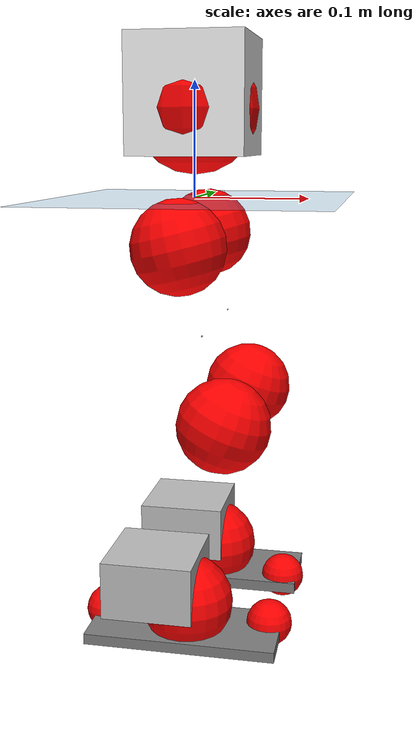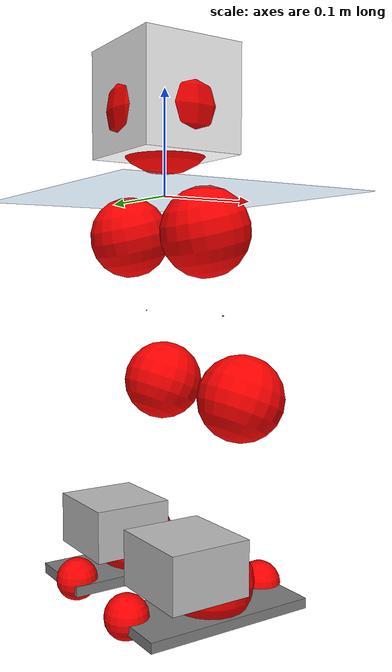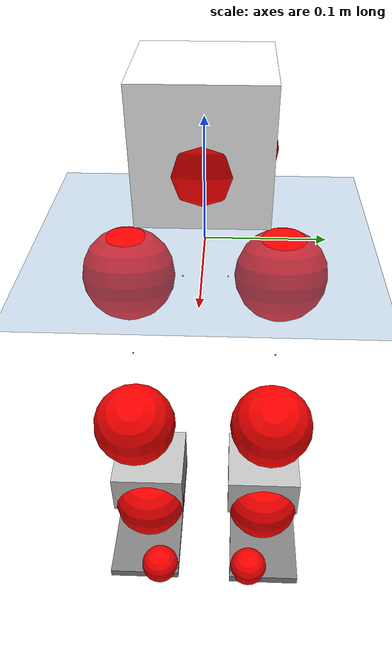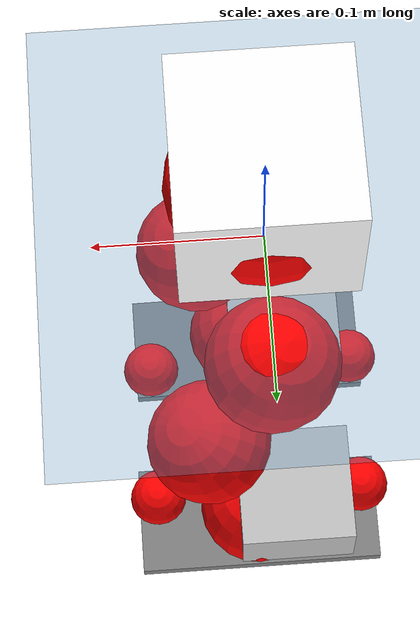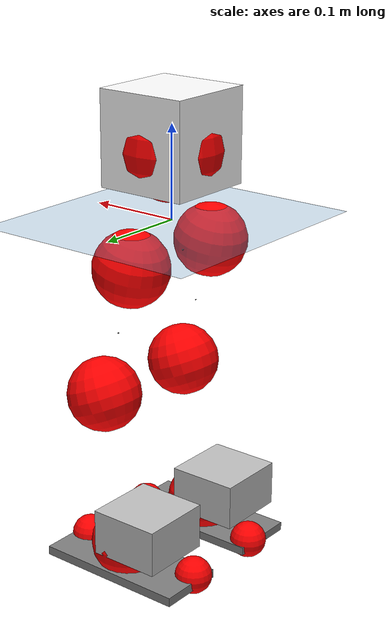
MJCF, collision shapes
<mujoco model="pi_12dof_release_v1">
  <compiler angle="radian" assetdir="assets" balanceinertia="true" inertiafromgeom="false"/>

  <option timestep="0.005" density="1.2" viscosity="2e-05"/>

  <size nkey="1"/>

  <visual>
    <quality shadowsize="8192"/>
    <map shadowclip="0.5"/>
  </visual>

  <default>
    <default class="/">
      <joint armature="0.01" damping="0.01" frictionloss="0.01"/>
      <geom contype="0" conaffinity="0" group="1" solref="-1000 -80"/>
      <site size="0.01 0.005 0.005" group="5"/>
      <general forcelimited="true" biastype="affine" gainprm="20" biasprm="0 -20 -0.5"/>
      <default class="foot">
        <geom size="0.0845 0.036 0.005" type="box" condim="6" group="4" priority="1" friction="0.9 0.2 0.2" solimp="0.015 1 0.005"/>
      </default>
      <default class="reward_collision_sphere">
        <geom group="5" rgba="1 0 0 1"/>
      </default>
    </default>
  </default>

  <asset>
    <texture type="skybox" colorspace="auto" name="//unnamed_texture_0" builtin="gradient" rgb1="0.95 0.95 0.95" rgb2="0.95 0.95 0.95" width="100" height="600"/>
    <texture type="2d" colorspace="auto" name="texplane" builtin="checker" rgb1="0.345 0.575 0.748" rgb2="0.345 0.575 0.748" markrgb="1 1 1" width="512" height="512"/>
    <material name="MatPlane" class="/" texture="texplane" texuniform="true" texrepeat="2 2" specular="0.9"/>
    <mesh name="baselink_1" class="/" file="baselink_1.STL"/>
    <mesh name="r_hip_pitch_link" class="/" file="r_hip_pitch_link.STL"/>
    <mesh name="r_hip_roll_link" class="/" file="r_hip_roll_link.STL"/>
    <mesh name="r_thigh_link" class="/" file="r_thigh_link.STL"/>
    <mesh name="r_calf_link" class="/" file="r_calf_link.STL"/>
    <mesh name="r_ankle_pitch_link" class="/" file="r_ankle_pitch_link.STL"/>
    <mesh name="r_ankle_roll_link" class="/" file="r_ankle_roll_link.STL"/>
    <mesh name="l_hip_pitch_link" class="/" file="l_hip_pitch_link.STL"/>
    <mesh name="l_hip_roll_link" class="/" file="l_hip_roll_link.STL"/>
    <mesh name="l_thigh_link" class="/" file="l_thigh_link.STL"/>
    <mesh name="l_calf_link" class="/" file="l_calf_link.STL"/>
    <mesh name="l_ankle_pitch_link" class="/" file="l_ankle_pitch_link.STL"/>
    <mesh name="l_ankle_roll_link" class="/" file="l_ankle_roll_link.STL"/>
  </asset>

  <worldbody>
    <geom name="floor" class="/" size="100 100 0.125" type="plane" group="0" material="MatPlane"/>
    <light name="toplight_shadow" class="/" pos="0 0 5" dir="0.0990148 0.0990148 -0.990148" type="directional" ambient="0.04 0.04 0.04" diffuse="0.55 0.55 0.55" specular="0.12 0.12 0.12"/>
    <light name="toplight_fill" class="/" pos="0 0 5" dir="0.0990148 0.0990148 -0.990148" type="directional" castshadow="false" ambient="0.04 0.04 0.04" diffuse="0.3 0.3 0.3" specular="0.08 0.08 0.08"/>
    <body name="trunk" pos="0.000514843 0.000219647 -0.00154648" quat="1 8.94261e-06 0.000110607 0.000577478">
      <inertial pos="0.00309339 -0.000567982 0.0441682" quat="0.692537 0.00951466 0.00609675 0.721294" mass="2.28806" diaginertia="0.0155917 0.00374106 0.00696079"/>
      <joint name="//unnamed_joint_0" type="free"/>
      <geom name="//unnamed_geom_1" class="/" type="mesh" density="0" rgba="1 1 1 1" mesh="baselink_1"/>
      <geom name="//unnamed_geom_2" class="/" size="0.0505717 0.0505717 0.0505717" pos="0 0 0.0883433" type="box" rgba="1 1 1 1"/>
      <geom name="//unnamed_geom_3" class="reward_collision_sphere" size="0.0556289" pos="0 0 0.0773004"/>
      <site name="imu" class="/" pos="0.00169375 -0.00393355 -0.00071099" size="0.0101143"/>
      <camera name="track" class="/" pos="0 -1.67142 0" quat="0.707107 0.707107 0 0" mode="trackcom"/>
      <camera name="ego_camera" class="/" pos="0.0820729 0 0.198772" quat="-0.5 -0.5 0.5 0.5"/>
      <body name="r_hip_pitch_link" pos="0.000249028 -0.0196624 -0.0359024" quat="0.992196 -7.83039e-06 -0.124691 4.00668e-06">
        <inertial pos="0.000493613 -0.0465375 -0.00100431" quat="-0.0241535 0.708359 -0.0244281 0.705016" mass="0.386774" diaginertia="0.00017184 4.0567e-05 0.000137949"/>
        <joint name="r_hip_pitch_joint" class="/" pos="0 0 0" axis="-0.000195387 -0.999998 0.00219946" stiffness="0.000709987" range="-1.74718 1.25471" armature="0.01022" damping="0.0150967" frictionloss="0.0103585"/>
        <geom name="//unnamed_geom_4" class="/" type="mesh" density="0" rgba="0.75294 0.75294 0.75294 1" mesh="r_hip_pitch_link"/>
        <geom name="//unnamed_geom_5" class="/" size="0.000505717 0.000505717 0.000505717" type="box" rgba="0.75294 0.75294 0.75294 1"/>
        <body name="r_hip_roll_link" pos="-0.000647062 -0.0471931 0.000636534" quat="1 -0.000222644 0.000133078 -3.89484e-05">
          <inertial pos="-0.000608062 -0.000197366 -0.0674728" quat="0.705785 -0.0811396 -0.08439 0.698686" mass="0.398663" diaginertia="0.000521372 0.00011233 0.000208226"/>
          <joint name="r_hip_roll_joint" class="/" pos="0 0 0" axis="-0.999999 0.000610434 -0.00105872" range="-0.123901 0.496404" armature="0.00921327" damping="0.00884115" frictionloss="0.00975518"/>
          <geom name="//unnamed_geom_6" class="/" type="mesh" density="0" rgba="0.75294 0.75294 0.75294 1" mesh="r_hip_roll_link"/>
          <geom name="//unnamed_geom_7" class="/" size="0.000505717 0.000505717 0.000505717" type="box" rgba="0.75294 0.75294 0.75294 1"/>
          <geom name="//unnamed_geom_8" class="reward_collision_sphere" size="0.0404574"/>
          <body name="r_thigh_link" pos="0.000852609 0.000272217 -0.0761616" quat="1 2.1358e-05 -7.2592e-05 0.000302597">
            <inertial pos="-0.00139539 -0.000500124 -0.0519912" quat="0.737377 0.675481 0.000241883 -0.000999529" mass="0.117246" diaginertia="0.000194208 3.89153e-05 9.52306e-05"/>
            <joint name="r_thigh_joint" class="/" pos="0 0 0" axis="1.32056e-05 -3.35339e-05 -1" range="-0.282628 0.602356" armature="0.00932079" damping="0.00300252" frictionloss="0.00988321"/>
            <geom name="//unnamed_geom_9" class="/" type="mesh" density="0" rgba="0.75294 0.75294 0.75294 1" mesh="r_thigh_link"/>
            <geom name="//unnamed_geom_10" class="/" size="0.000505717 0.000505717 0.000505717" type="box" rgba="0.75294 0.75294 0.75294 1"/>
            <body name="r_calf_link" pos="-0.000404254 -0.00212995 -0.0781948" quat="0.947439 0.000484701 0.319937 0.000307725">
              <inertial pos="0.000690576 -0.000831042 -0.0767341" quat="0.999945 -0.00363328 -0.00785778 0.00598213" mass="0.864429" diaginertia="0.00558981 0.0014404 0.000290356"/>
              <joint name="r_calf_joint" class="/" pos="0 0 0" axis="-0.00177748 -0.999996 -0.00240421" range="-1.65412 0.629911" armature="0.0101364" damping="0.00665399" frictionloss="0.0102587"/>
              <geom name="//unnamed_geom_11" class="/" type="mesh" density="0" rgba="0.75294 0.75294 0.75294 1" mesh="r_calf_link"/>
              <geom name="//unnamed_geom_12" class="/" size="0.000505717 0.000505717 0.000505717" type="box" rgba="0.75294 0.75294 0.75294 1"/>
              <geom name="//unnamed_geom_13" class="reward_collision_sphere" size="0.0404574"/>
              <body name="r_ankle_pitch_link" pos="9.50986e-05 0.000859655 -0.153002" quat="0.980098 0.000144457 -0.198515 0.000309455">
                <inertial pos="0.00624442 0.00321329 0.000462255" quat="0.00347038 0.706407 -0.0020388 0.707795" mass="0.182334" diaginertia="0.000481439 9.01236e-05 0.00019454"/>
                <joint name="r_ankle_pitch_joint" class="/" pos="0 0 0" axis="-0.00467571 -0.999988 0.00136561" stiffness="0.000842457" range="-1.28027 0.502604" armature="0.0105465" damping="0.018604" frictionloss="0.0103656"/>
                <geom name="//unnamed_geom_14" class="/" type="mesh" density="0" rgba="0.75294 0.75294 0.75294 1" mesh="r_ankle_pitch_link"/>
                <geom name="//unnamed_geom_15" class="/" size="0.039446 0.0404574 0.0252859" type="box" rgba="0.75294 0.75294 0.75294 1"/>
                <body name="r_ankle_roll_link" pos="0.0821655 0.00149969 7.06658e-05" quat="1 3.40694e-05 5.65659e-05 1.73226e-05">
                  <inertial pos="-0.025453 -0.000877832 -0.0159996" quat="0.562726 0.436619 0.430298 0.554569" mass="0.526107" diaginertia="0.00175228 0.000418684 0.000462342"/>
                  <joint name="r_ankle_roll_joint" class="/" pos="0 0 0" axis="-1 -0.000367429 -0.000315465" range="-0.186981 0.136346" armature="0.00974777" damping="0.0127799" frictionloss="0.00949472"/>
                  <geom name="//unnamed_geom_16" class="/" type="mesh" density="0" rgba="0.75294 0.75294 0.75294 1" mesh="r_ankle_roll_link"/>
                  <geom name="//unnamed_geom_17" class="/" type="mesh" rgba="0.75294 0.75294 0.75294 1" mesh="r_ankle_roll_link"/>
                  <geom name="right_foot" class="foot" size="0.0832519 0.0375312 0.00465971" pos="-0.0558096 0 -0.0485888"/>
                  <geom name="//unnamed_geom_19" class="reward_collision_sphere" size="0.0404574" pos="-0.0547153 0 -0.0220858"/>
                  <geom name="//unnamed_geom_20" class="reward_collision_sphere" size="0.0202287" pos="0.0164146 0.0167142 -0.0441717"/>
                  <geom name="//unnamed_geom_21" class="reward_collision_sphere" size="0.0202287" pos="-0.131317 0.0167142 -0.0441717"/>
                  <site name="right_foot" class="foot" pos="-0.0558096 0 -0.0485888" size="0.0101143"/>
                </body>
              </body>
            </body>
          </body>
        </body>
      </body>
      <body name="l_hip_pitch_link" pos="5.74082e-05 0.019731 -0.0357884" quat="0.99222 2.26973e-05 -0.124498 -6.62881e-05">
        <inertial pos="0.00194792 0.0437812 -0.00197404" quat="-0.0374516 0.706553 0.0335453 0.705871" mass="0.404974" diaginertia="0.000205891 4.27881e-05 0.000166887"/>
        <joint name="l_hip_pitch_joint" class="/" pos="0 0 0" axis="0.00286084 0.99999 -0.00349737" range="-1.27632 1.7712" armature="0.0101383" damping="0.00170006" frictionloss="0.0096493"/>
        <geom name="//unnamed_geom_22" class="/" type="mesh" density="0" rgba="0.75294 0.75294 0.75294 1" mesh="l_hip_pitch_link"/>
        <geom name="//unnamed_geom_23" class="/" size="0.000505717 0.000505717 0.000505717" type="box" rgba="0.75294 0.75294 0.75294 1"/>
        <body name="l_hip_roll_link" pos="-0.000808977 0.0459345 0.00168882" quat="1 -9.70865e-07 5.9776e-05 -0.000109195">
          <inertial pos="0.000445717 -3.87154e-05 -0.0693924" quat="0.699205 -0.0751709 -0.0779947 0.706668" mass="0.412573" diaginertia="0.000543342 0.000116619 0.000215084"/>
          <joint name="l_hip_roll_joint" class="/" pos="0 0 0" axis="-1 2.21612e-05 0.000745212" range="-0.501502 0.132524" armature="0.0101672" damping="0.00243936" frictionloss="0.0100976"/>
          <geom name="//unnamed_geom_24" class="/" type="mesh" density="0" rgba="0.75294 0.75294 0.75294 1" mesh="l_hip_roll_link"/>
          <geom name="//unnamed_geom_25" class="/" size="0.000505717 0.000505717 0.000505717" type="box" rgba="0.75294 0.75294 0.75294 1"/>
          <geom name="//unnamed_geom_26" class="reward_collision_sphere" size="0.0404574"/>
          <body name="l_thigh_link" pos="0.000201234 -0.000746256 -0.0766016" quat="1 -1.8903e-05 -2.27357e-05 2.14572e-05">
            <inertial pos="-0.000963674 -0.00212208 -0.0544215" quat="0.678122 0.734942 0.00149465 0.00293234" mass="0.116722" diaginertia="0.000196318 3.91611e-05 9.42666e-05"/>
            <joint name="l_thigh_joint" class="/" pos="0 0 0" axis="0.000579774 0.000144275 -1" range="-0.594789 0.285717" armature="0.0100445" damping="0.011673" frictionloss="0.0109608"/>
            <geom name="//unnamed_geom_27" class="/" type="mesh" density="0" rgba="0.75294 0.75294 0.75294 1" mesh="l_thigh_link"/>
            <geom name="//unnamed_geom_28" class="/" size="0.000505717 0.000505717 0.000505717" type="box" rgba="0.75294 0.75294 0.75294 1"/>
            <body name="l_calf_link" pos="0.00147718 0.000560556 -0.0764559" quat="0.947624 4.64327e-06 0.319387 -8.24545e-05">
              <inertial pos="0.000408041 0.0033263 -0.0770519" quat="0.999986 -0.00222433 0.00030426 0.00469369" mass="0.837737" diaginertia="0.00572341 0.00144898 0.000288843"/>
              <joint name="l_calf_joint" class="/" pos="0 0 0" axis="-0.000174011 0.999992 0.00410566" range="-0.664378 1.67514" armature="0.0100752" damping="0.00999697" frictionloss="0.0098327"/>
              <geom name="//unnamed_geom_29" class="/" type="mesh" density="0" rgba="0.75294 0.75294 0.75294 1" mesh="l_calf_link"/>
              <geom name="//unnamed_geom_30" class="/" size="0.000505717 0.000505717 0.000505717" type="box" rgba="0.75294 0.75294 0.75294 1"/>
              <geom name="//unnamed_geom_31" class="reward_collision_sphere" size="0.0404574"/>
              <body name="l_ankle_pitch_link" pos="0.00135989 0.000123666 -0.153646" quat="0.980024 0.000176383 -0.198881 0.000145829">
                <inertial pos="0.00435885 2.42848e-05 -0.00133789" quat="-0.004107 0.706214 0.00316279 0.707979" mass="0.179225" diaginertia="0.000489865 9.09323e-05 0.000198082"/>
                <joint name="l_ankle_pitch_joint" class="/" pos="0 0 0" axis="0.000476979 0.999999 0.00126021" range="-0.496649 1.30638" armature="0.0106254" damping="0" frictionloss="0.0100123"/>
                <geom name="//unnamed_geom_32" class="/" type="mesh" density="0" rgba="0.75294 0.75294 0.75294 1" mesh="l_ankle_pitch_link"/>
                <geom name="//unnamed_geom_33" class="/" size="0.039446 0.0404574 0.0252859" type="box" rgba="0.75294 0.75294 0.75294 1"/>
                <body name="l_ankle_roll_link" pos="0.0810787 0.000616502 -0.000971383" quat="1 -0.000472746 0.000430697 -0.000647019">
                  <inertial pos="-0.0268763 -0.000415427 -0.0156214" quat="0.5585 0.431467 0.4385 0.556446" mass="0.5298" diaginertia="0.00174949 0.000411868 0.000454125"/>
                  <joint name="l_ankle_roll_joint" class="/" pos="0 0 0" axis="-1 -2.78423e-05 9.81176e-06" range="-0.14443 0.115646" armature="0.00998479" damping="0.00767766" frictionloss="0.0106032"/>
                  <geom name="//unnamed_geom_34" class="/" type="mesh" density="0" rgba="0.75294 0.75294 0.75294 1" mesh="l_ankle_roll_link"/>
                  <geom name="//unnamed_geom_35" class="/" type="mesh" rgba="0.75294 0.75294 0.75294 1" mesh="l_ankle_roll_link"/>
                  <geom name="left_foot" class="foot" size="0.0859781 0.0374983 0.00498997" pos="-0.0558096 0 -0.0485888"/>
                  <geom name="//unnamed_geom_37" class="reward_collision_sphere" size="0.0404574" pos="-0.0547153 0 -0.0220858"/>
                  <geom name="//unnamed_geom_38" class="reward_collision_sphere" size="0.0202287" pos="0.0164146 -0.0167142 -0.0441717"/>
                  <geom name="//unnamed_geom_39" class="reward_collision_sphere" size="0.0202287" pos="-0.131317 -0.0167142 -0.0441717"/>
                  <site name="left_foot" class="foot" pos="-0.0558096 0 -0.0485888" size="0.0101143"/>
                </body>
              </body>
            </body>
          </body>
        </body>
      </body>
    </body>
  </worldbody>

  <contact>
    <pair class="/" geom1="floor" geom2="right_foot" name="//unnamed_contact_1"/>
    <pair class="/" geom1="floor" geom2="left_foot" name="//unnamed_contact_0"/>
  </contact>

  <actuator>
    <general name="r_hip_pitch_joint" class="/" joint="r_hip_pitch_joint" forcerange="-21.8343 21.8343" gainprm="19.3618" biasprm="0 -19.3618 -0.498053"/>
    <general name="r_hip_roll_joint" class="/" joint="r_hip_roll_joint" forcerange="-19.8715 19.8715" gainprm="19.3618" biasprm="0 -19.3618 -0.498053"/>
    <general name="r_thigh_joint" class="/" joint="r_thigh_joint" forcerange="-21.113 21.113" gainprm="19.3618" biasprm="0 -19.3618 -0.498053"/>
    <general name="r_calf_joint" class="/" joint="r_calf_joint" forcerange="-22.6982 22.6982" gainprm="19.3618" biasprm="0 -19.3618 -0.498053"/>
    <general name="r_ankle_pitch_joint" class="/" joint="r_ankle_pitch_joint" forcerange="-21.9929 21.9929" gainprm="19.3618" biasprm="0 -19.3618 -0.498053"/>
    <general name="r_ankle_roll_joint" class="/" joint="r_ankle_roll_joint" forcerange="-19.8545 19.8545" gainprm="19.3618" biasprm="0 -19.3618 -0.498053"/>
    <general name="l_hip_pitch_joint" class="/" joint="l_hip_pitch_joint" forcerange="-21.2226 21.2226" gainprm="19.3618" biasprm="0 -19.3618 -0.498053"/>
    <general name="l_hip_roll_joint" class="/" joint="l_hip_roll_joint" forcerange="-21.5667 21.5667" gainprm="19.3618" biasprm="0 -19.3618 -0.498053"/>
    <general name="l_thigh_joint" class="/" joint="l_thigh_joint" forcerange="-20.5716 20.5716" gainprm="19.3618" biasprm="0 -19.3618 -0.498053"/>
    <general name="l_calf_joint" class="/" joint="l_calf_joint" forcerange="-20.8457 20.8457" gainprm="19.3618" biasprm="0 -19.3618 -0.498053"/>
    <general name="l_ankle_pitch_joint" class="/" joint="l_ankle_pitch_joint" forcerange="-20.5119 20.5119" gainprm="19.3618" biasprm="0 -19.3618 -0.498053"/>
    <general name="l_ankle_roll_joint" class="/" joint="l_ankle_roll_joint" forcerange="-21.1905 21.1905" gainprm="19.3618" biasprm="0 -19.3618 -0.498053"/>
  </actuator>

  <sensor>
    <gyro site="imu" name="imu_angular_velocity"/>
    <velocimeter site="imu" name="imu_linear_velocity"/>
    <framelinvel objtype="site" objname="left_foot" name="left_foot_global_linear_velocity"/>
    <framelinvel objtype="site" objname="right_foot" name="right_foot_global_linear_velocity"/>
  </sensor>

  <keyframe>
    <key name="home" qpos="0 0 0.291 1 0 0 0 0.4 0 0 -0.8 0.4 0 -0.4 0 0 0.8 -0.4 0"/>
  </keyframe>
</mujoco>
